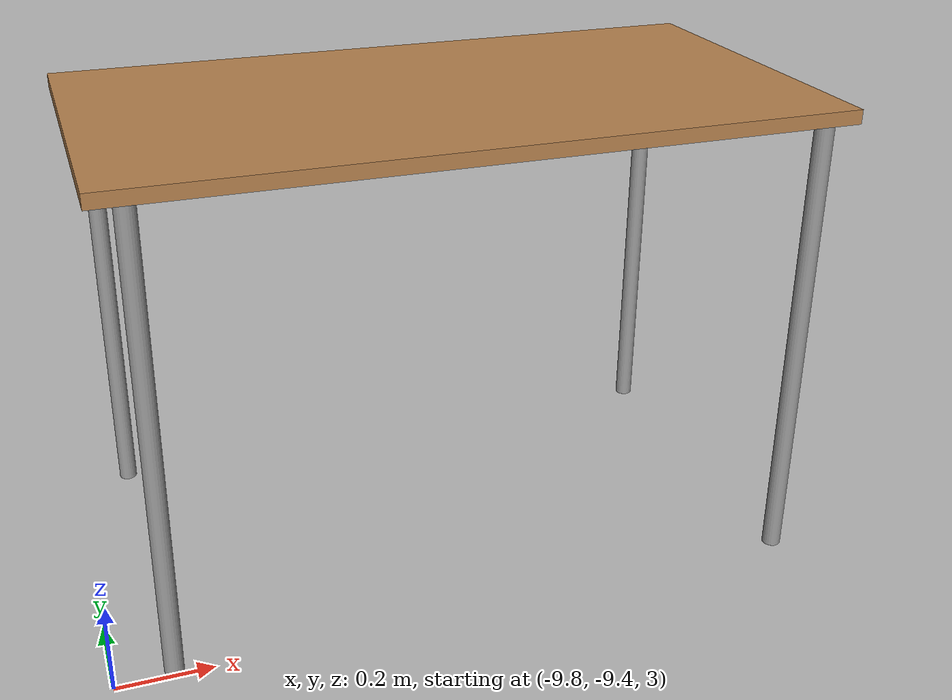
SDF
<sdf version="1.5">
 <world name="default">
  <include><uri>model://sun</uri></include>
  <include><uri>model://outdoor_terrain</uri></include>
  <include><uri>model://ground_plane</uri></include>
  <include><uri>model://table</uri><pose>-9 -9 3 0 0 0</pose></include>
 </world>
</sdf>

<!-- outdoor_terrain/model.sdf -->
<sdf version="1.6">
  <model name="outdoor_terrain">
    <static>true</static>
    <link name="link">
      <collision name="collision">
        <geometry>
          <mesh>
            <uri>model://outdoor_terrain/meshes/terrain.dae</uri>
          </mesh>
        </geometry>
      </collision>
      <visual name="visual">
        <geometry>
          <mesh>
            <uri>model://outdoor_terrain/meshes/terrain.dae</uri>
          </mesh>
        </geometry>
      </visual>
    </link>
  </model>
</sdf>

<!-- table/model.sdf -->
<sdf version="1.5">
  <model name="table">
    <static>true</static>
    <link name="link">
      <collision name="surface">
        <pose>0 0 1.0 0 0 0</pose>
        <geometry>
          <box>
            <size>1.5 0.8 0.03</size>
          </box>
        </geometry>
        <surface>
          <friction>
            <ode>
              <mu>0.6</mu>
              <mu2>0.6</mu2>
            </ode>
          </friction>
        </surface>
      </collision>
      <visual name="visual1">
        <pose>0 0 1.0 0 0 0</pose>
        <geometry>
          <box>
            <size>1.5 0.8 0.03</size>
          </box>
        </geometry>
        <material>
          <script>
            <uri>model://media/materials/scripts/gazebo.material</uri>
            <name>Gazebo/Wood</name>
          </script>
        </material>
      </visual>
      <collision name="front_left_leg">
        <pose>0.68 0.38 0.5 0 0 0</pose>
        <geometry>
          <cylinder>
            <radius>0.02</radius>
            <length>1.0</length>
          </cylinder>
        </geometry>
      </collision>
      <visual name="front_left_leg">
        <pose>0.68 0.38 0.5 0 0 0</pose>
        <geometry>
          <cylinder>
            <radius>0.02</radius>
            <length>1.0</length>
          </cylinder>
        </geometry>
        <material>
          <script>
            <uri>model://media/materials/scripts/gazebo.material</uri>
            <name>Gazebo/Grey</name>
          </script>
        </material>
      </visual>
      <collision name="front_right_leg">
        <pose>0.68 -0.38 0.5 0 0 0</pose>
        <geometry>
          <cylinder>
            <radius>0.02</radius>
            <length>1.0</length>
          </cylinder>
        </geometry>
      </collision>
      <visual name="front_right_leg">
        <pose>0.68 -0.38 0.5 0 0 0</pose>
        <geometry>
          <cylinder>
            <radius>0.02</radius>
            <length>1.0</length>
          </cylinder>
        </geometry>
        <material>
          <script>
            <uri>model://media/materials/scripts/gazebo.material</uri>
            <name>Gazebo/Grey</name>
          </script>
        </material>
      </visual>
      <collision name="back_right_leg">
        <pose>-0.68 -0.38 0.5 0 0 0</pose>
        <geometry>
          <cylinder>
            <radius>0.02</radius>
            <length>1.0</length>
          </cylinder>
        </geometry>
      </collision>
      <visual name="back_right_leg">
        <pose>-0.68 -0.38 0.5 0 0 0</pose>
        <geometry>
          <cylinder>
            <radius>0.02</radius>
            <length>1.0</length>
          </cylinder>
        </geometry>
        <material>
          <script>
            <uri>model://media/materials/scripts/gazebo.material</uri>
            <name>Gazebo/Grey</name>
          </script>
        </material>
      </visual>
      <collision name="back_left_leg">
        <pose>-0.68 0.38 0.5 0 0 0</pose>
        <geometry>
          <cylinder>
            <radius>0.02</radius>
            <length>1.0</length>
          </cylinder>
        </geometry>
      </collision>
      <visual name="back_left_leg">
        <pose>-0.68 0.38 0.5 0 0 0</pose>
        <geometry>
          <cylinder>
            <radius>0.02</radius>
            <length>1.0</length>
          </cylinder>
        </geometry>
        <material>
          <script>
            <uri>model://media/materials/scripts/gazebo.material</uri>
            <name>Gazebo/Grey</name>
          </script>
        </material>
      </visual>
    </link>
  </model>
</sdf>
